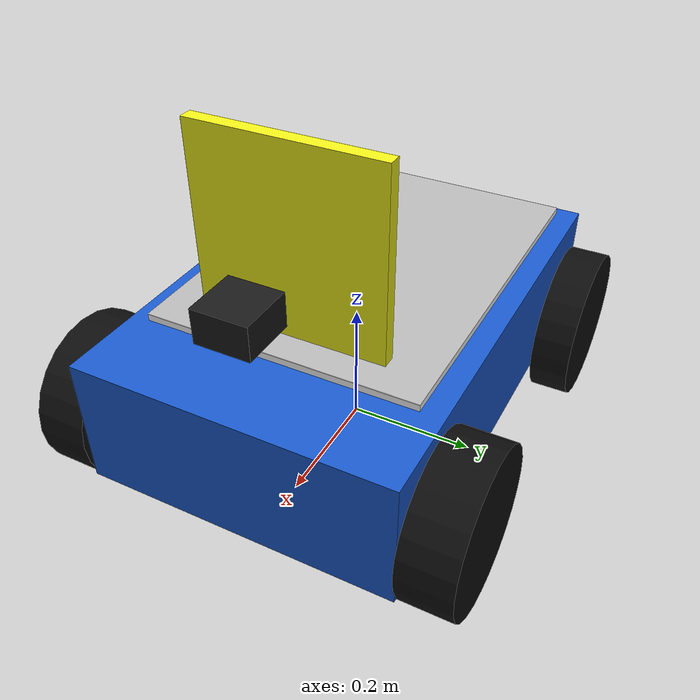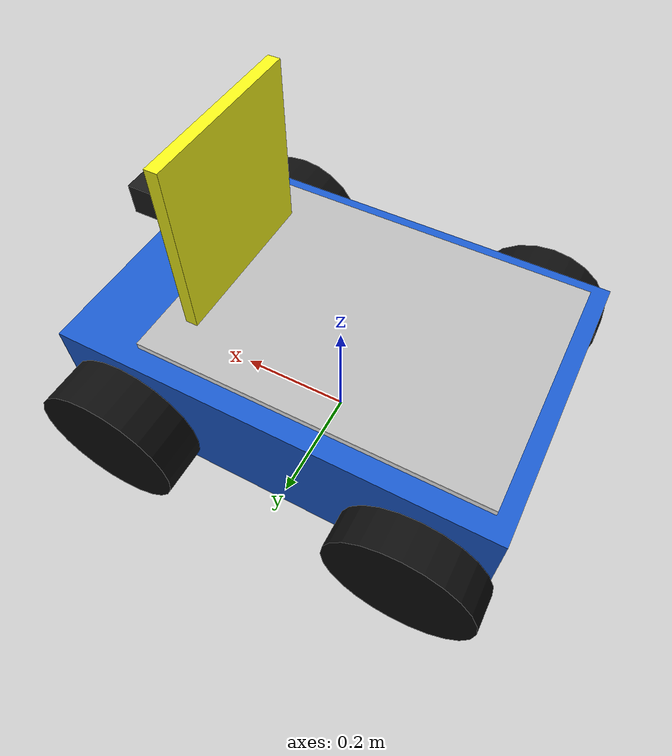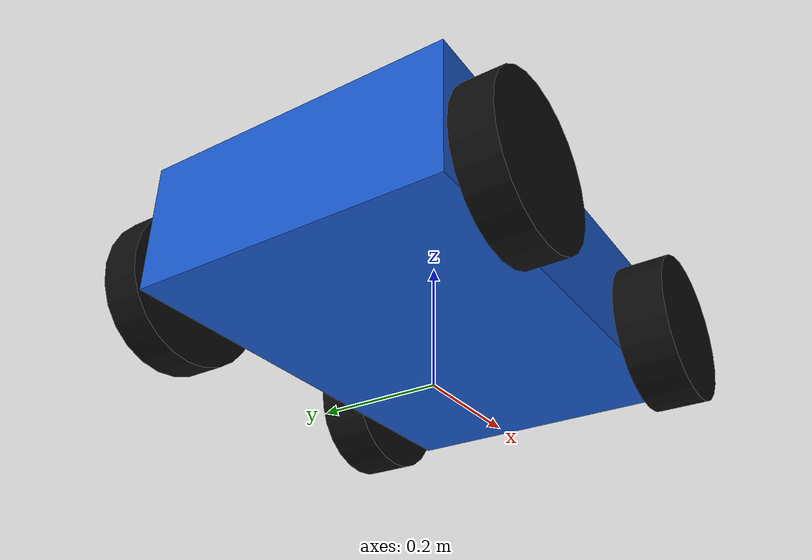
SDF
<?xml version="1.0"?>
<sdf version="1.6">
  <model name="ugv_mvp">
    <static>false</static>
    <link name="base_link">
      <pose>0 0 0.16 0 0 0</pose>
      <inertial>
        <mass>8.0</mass>
        <inertia>
          <ixx>0.22</ixx><iyy>0.32</iyy><izz>0.42</izz>
          <ixy>0</ixy><ixz>0</ixz><iyz>0</iyz>
        </inertia>
      </inertial>
      <collision name="chassis_collision">
        <geometry><box><size>0.72 0.48 0.20</size></box></geometry>
      </collision>
      <visual name="chassis_visual">
        <geometry><box><size>0.72 0.48 0.20</size></box></geometry>
        <material><ambient>0.10 0.35 0.80 1</ambient><diffuse>0.10 0.35 0.80 1</diffuse></material>
      </visual>
    </link>

    <link name="rear_left_wheel">
      <pose>-0.25 0.28 0.12 -1.570796 0 0</pose>
      <inertial><mass>0.4</mass><inertia><ixx>0.002</ixx><iyy>0.002</iyy><izz>0.002</izz><ixy>0</ixy><ixz>0</ixz><iyz>0</iyz></inertia></inertial>
      <collision name="collision"><geometry><cylinder><radius>0.12</radius><length>0.08</length></cylinder></geometry><surface><friction><ode><mu>1.2</mu><mu2>1.2</mu2></ode></friction></surface></collision>
      <visual name="visual"><geometry><cylinder><radius>0.12</radius><length>0.06</length></cylinder></geometry><material><ambient>0.05 0.05 0.05 1</ambient></material></visual>
    </link>
    <joint name="rear_left_wheel_joint" type="revolute">
      <parent>base_link</parent><child>rear_left_wheel</child>
      <axis><xyz>0 1 0</xyz><use_parent_model_frame>1</use_parent_model_frame><limit><lower>-1000000</lower><upper>1000000</upper><effort>20</effort><velocity>30</velocity></limit></axis>
    </joint>

    <link name="rear_right_wheel">
      <pose>-0.25 -0.28 0.12 1.570796 0 0</pose>
      <inertial><mass>0.4</mass><inertia><ixx>0.002</ixx><iyy>0.002</iyy><izz>0.002</izz><ixy>0</ixy><ixz>0</ixz><iyz>0</iyz></inertia></inertial>
      <collision name="collision"><geometry><cylinder><radius>0.12</radius><length>0.08</length></cylinder></geometry><surface><friction><ode><mu>1.2</mu><mu2>1.2</mu2></ode></friction></surface></collision>
      <visual name="visual"><geometry><cylinder><radius>0.12</radius><length>0.06</length></cylinder></geometry><material><ambient>0.05 0.05 0.05 1</ambient></material></visual>
    </link>
    <joint name="rear_right_wheel_joint" type="revolute">
      <parent>base_link</parent><child>rear_right_wheel</child>
      <axis><xyz>0 1 0</xyz><use_parent_model_frame>1</use_parent_model_frame><limit><lower>-1000000</lower><upper>1000000</upper><effort>20</effort><velocity>30</velocity></limit></axis>
    </joint>

    <link name="front_left_wheel">
      <pose>0.25 0.28 0.12 -1.570796 0 0</pose>
      <inertial><mass>0.4</mass><inertia><ixx>0.002</ixx><iyy>0.002</iyy><izz>0.002</izz><ixy>0</ixy><ixz>0</ixz><iyz>0</iyz></inertia></inertial>
      <collision name="collision"><geometry><cylinder><radius>0.12</radius><length>0.08</length></cylinder></geometry><surface><friction><ode><mu>1.2</mu><mu2>1.2</mu2></ode></friction></surface></collision>
      <visual name="visual"><geometry><cylinder><radius>0.12</radius><length>0.08</length></cylinder></geometry><material><ambient>0.05 0.05 0.05 1</ambient></material></visual>
    </link>
    <joint name="front_left_wheel_joint" type="revolute">
      <parent>base_link</parent><child>front_left_wheel</child>
      <axis><xyz>0 1 0</xyz><use_parent_model_frame>1</use_parent_model_frame><limit><lower>-1000000</lower><upper>1000000</upper><effort>20</effort><velocity>30</velocity></limit></axis>
    </joint>

    <link name="front_right_wheel">
      <pose>0.25 -0.28 0.12 1.570796 0 0</pose>
      <inertial><mass>0.4</mass><inertia><ixx>0.002</ixx><iyy>0.002</iyy><izz>0.002</izz><ixy>0</ixy><ixz>0</ixz><iyz>0</iyz></inertia></inertial>
      <collision name="collision"><geometry><cylinder><radius>0.12</radius><length>0.08</length></cylinder></geometry><surface><friction><ode><mu>1.2</mu><mu2>1.2</mu2></ode></friction></surface></collision>
      <visual name="visual"><geometry><cylinder><radius>0.12</radius><length>0.08</length></cylinder></geometry><material><ambient>0.05 0.05 0.05 1</ambient></material></visual>
    </link>
    <joint name="front_right_wheel_joint" type="revolute">
      <parent>base_link</parent><child>front_right_wheel</child>
      <axis><xyz>0 1 0</xyz><use_parent_model_frame>1</use_parent_model_frame><limit><lower>-1000000</lower><upper>1000000</upper><effort>20</effort><velocity>30</velocity></limit></axis>
    </joint>

    <link name="fiducial">
      <pose>0.18 0 0.42 0 0 0</pose>
      <visual name="marker">
        <geometry><box><size>0.02 0.28 0.28</size></box></geometry>
        <material><ambient>0.95 0.95 0.10 1</ambient><diffuse>0.95 0.95 0.10 1</diffuse></material>
      </visual>
    </link>
    <joint name="fiducial_joint" type="fixed"><parent>base_link</parent><child>fiducial</child></joint>

    <!-- A horizontal ChArUco board gives the nadir camera many sub-pixel corners. -->
    <link name="charuco_board">
      <pose>-0.05 0 0.275 0 0 0</pose>
      <visual name="backing">
        <pose>0 0 -0.005 0 0 0</pose>
        <geometry><box><size>0.565 0.415 0.01</size></box></geometry>
        <material><ambient>1 1 1 1</ambient><diffuse>1 1 1 1</diffuse><specular>0 0 0 1</specular></material>
      </visual>
      <visual name="charuco_texture">
        <geometry><mesh><uri>model://ugv_mvp/meshes/charuco_board.dae</uri></mesh></geometry>
        <material><script><uri>model://ugv_mvp/materials/scripts</uri><uri>model://ugv_mvp/materials/textures</uri><name>ugv_mvp/charuco_7x5</name></script></material>
      </visual>
    </link>
    <joint name="charuco_board_joint" type="fixed"><parent>base_link</parent><child>charuco_board</child></joint>

    <link name="camera_link">
      <pose>0.30 0 0.38 0 0 0</pose>
      <inertial><mass>0.02</mass><inertia><ixx>0.00001</ixx><iyy>0.00001</iyy><izz>0.00001</izz><ixy>0</ixy><ixz>0</ixz><iyz>0</iyz></inertia></inertial>
      <visual name="camera_visual">
        <geometry><box><size>0.08 0.08 0.05</size></box></geometry>
        <material><ambient>0.1 0.1 0.1 1</ambient></material>
      </visual>
      <sensor name="front_camera" type="camera">
        <always_on>true</always_on>
        <update_rate>20</update_rate>
        <visualize>false</visualize>
        <camera>
          <horizontal_fov>1.047198</horizontal_fov>
          <image><width>640</width><height>480</height><format>R8G8B8</format></image>
          <clip><near>0.05</near><far>20.0</far></clip>
        </camera>
        <plugin name="front_camera_ros" filename="libgazebo_ros_camera.so">
          <robotNamespace>/ugv_0</robotNamespace>
          <cameraName>camera</cameraName>
          <imageTopicName>image_raw</imageTopicName>
          <cameraInfoTopicName>camera_info</cameraInfoTopicName>
          <frameName>ugv_0/camera_link</frameName>
        </plugin>
      </sensor>
    </link>
    <joint name="camera_joint" type="fixed"><parent>base_link</parent><child>camera_link</child></joint>

    <!-- Planar velocity control keeps the lightweight demo platform stable. -->
    <plugin name="planar_move" filename="libgazebo_ros_planar_move.so">
      <robotNamespace>/ugv_0</robotNamespace>
      <commandTopic>cmd_vel</commandTopic>
      <odometryTopic>odom</odometryTopic>
      <odometryFrame>ugv_0/odom</odometryFrame>
      <robotBaseFrame>ugv_0/base_link</robotBaseFrame>
      <odometryRate>50</odometryRate>
      <cmdTimeout>0.25</cmdTimeout>
    </plugin>

    <plugin name="relative_pose_sensor" filename="librelative_pose_sensor_plugin.so">
      <camera_model_name>iris_0</camera_model_name>
      <camera_link_name>D435i::link</camera_link_name>
      <marker_link_name>fiducial</marker_link_name>
      <camera_frame>iris_0/camera_link</camera_frame>
      <observation_topic>/iris_0/ugv_observation</observation_topic>
      <update_rate>15.0</update_rate>
      <max_distance>8.0</max_distance>
      <horizontal_fov>1.047198</horizontal_fov>
      <vertical_fov>0.785398</vertical_fov>
      <position_stddev>0.0</position_stddev>
      <orientation_stddev>0.0</orientation_stddev>
    </plugin>
  </model>
</sdf>
